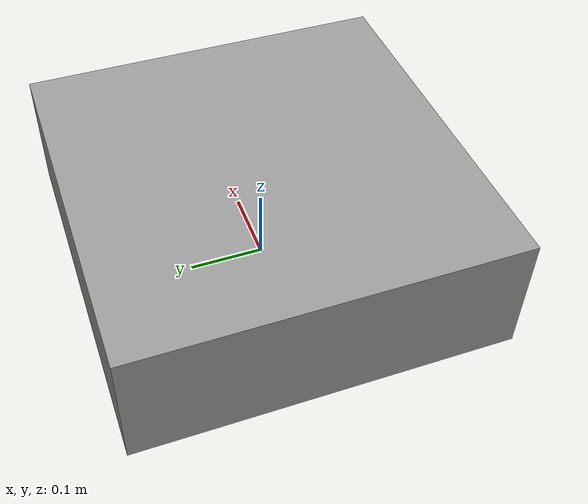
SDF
<?xml version='1.0'?>
<sdf version='1.7'>
  <model name='box_base'>
    <static>true</static> <!-- keep box fixed in place -->
    <allow_auto_disable>1</allow_auto_disable>

    <link name='link_2'>
      <inertial>
        <mass>1</mass>
        <inertia>
          <ixx>0.166667</ixx>
          <ixy>0</ixy>
          <ixz>0</ixz>
          <iyy>0.166667</iyy>
          <iyz>0</iyz>
          <izz>0.166667</izz>
        </inertia>
        <pose>0 0 0 0 0 0</pose>
      </inertial>

      <!-- Lift the box so its top is at z = 0.17 -->
      <pose>0 0 0.085 0 0 0</pose>

      <gravity>1</gravity>
      <self_collide>0</self_collide>
      <kinematic>0</kinematic>
      <enable_wind>0</enable_wind>

      <visual name='visual'>
        <pose>0 0 0 0 0 0</pose>
        <geometry>
          <box>
            <size>0.5 0.5 0.17</size>
          </box>
        </geometry>
        <material>
          <lighting>1</lighting>
          <script>
            <uri>file://media/materials/scripts/gazebo.material</uri>
            <name>Gazebo/Grey</name>
          </script>
          <shader type='pixel'>
            <normal_map>__default__</normal_map>
          </shader>
          <ambient>0.3 0.3 0.3 1</ambient>
          <diffuse>0.7 0.7 0.7 1</diffuse>
          <specular>0.01 0.01 0.01 1</specular>
          <emissive>0 0 0 1</emissive>
        </material>
        <transparency>0</transparency>
        <cast_shadows>1</cast_shadows>
      </visual>

      <collision name='collision'>
        <pose>0 0 0 0 0 0</pose>
        <geometry>
          <box>
            <size>0.5 0.5 0.17</size>
          </box>
        </geometry>
        <surface>
          <friction>
            <ode>
              <mu>1</mu>
              <mu2>1</mu2>
              <fdir1>0 0 0</fdir1>
              <slip1>0</slip1>
              <slip2>0</slip2>
            </ode>
            <torsional>
              <coefficient>1</coefficient>
              <patch_radius>0</patch_radius>
              <surface_radius>0</surface_radius>
              <use_patch_radius>1</use_patch_radius>
              <ode>
                <slip>0</slip>
              </ode>
            </torsional>
          </friction>
          <bounce>
            <restitution_coefficient>0</restitution_coefficient>
            <threshold>1e+06</threshold>
          </bounce>
          <contact>
            <ode>
              <soft_cfm>0</soft_cfm>
              <soft_erp>0.2</soft_erp>
              <kp>1e+13</kp>
              <kd>1</kd>
              <max_vel>0.01</max_vel>
              <min_depth>0</min_depth>
            </ode>
            <bullet>
              <split_impulse>1</split_impulse>
              <split_impulse_penetration_threshold>-0.01</split_impulse_penetration_threshold>
              <soft_cfm>0</soft_cfm>
              <soft_erp>0.2</soft_erp>
              <kp>1e+13</kp>
              <kd>1</kd>
            </bullet>
          </contact>
        </surface>
      </collision>

    </link>
  </model>
</sdf>
